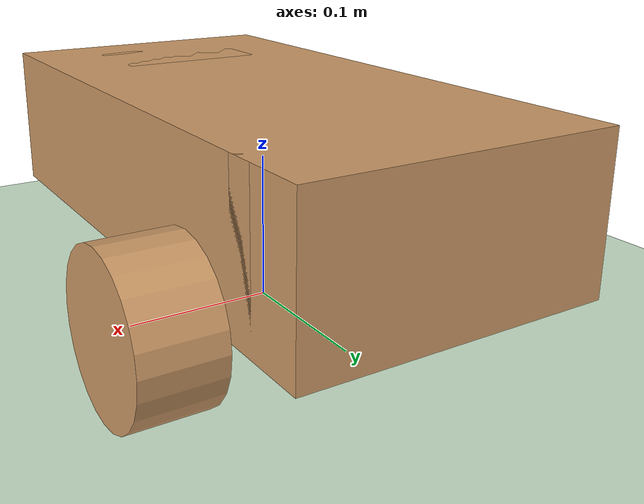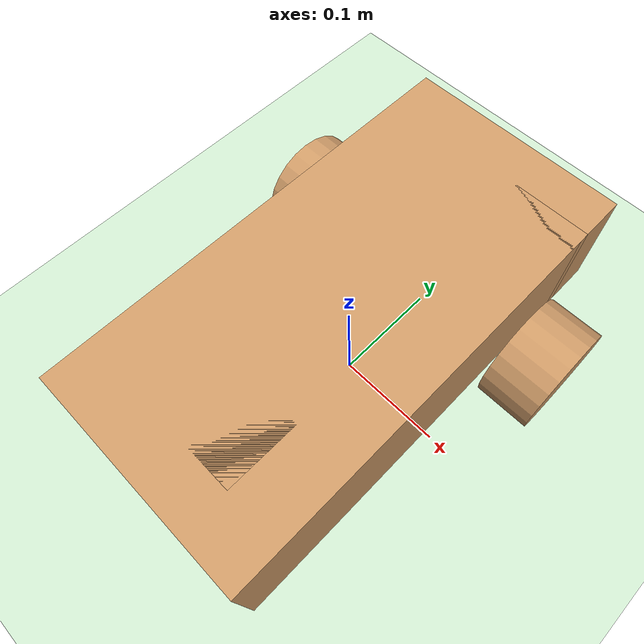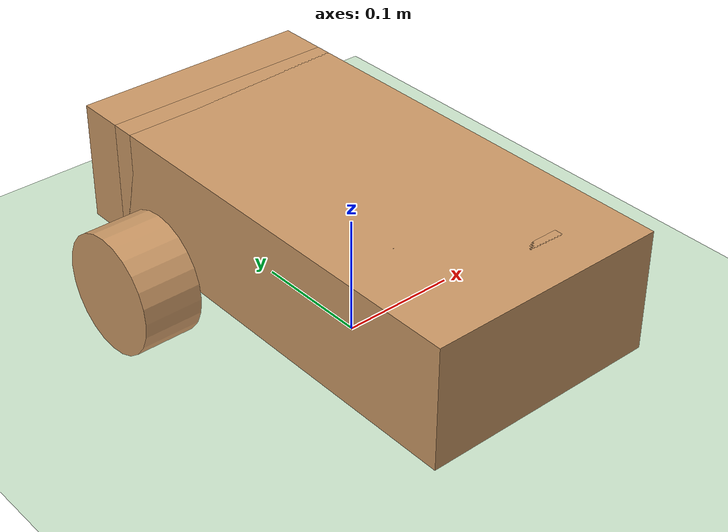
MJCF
<!-- Based off of point.xml from
https://github.com/openai/safety-gym/blob/master/safety_gym/xmls/point.xml-->
<mujoco>
    <compiler angle="degree" coordinate="local" inertiafromgeom="true" />
    <option integrator="RK4" timestep="0.02" />
    <default>
        <joint armature="0" damping="0" limited="false" />
        <geom conaffinity="0" condim="3" density="100" friction="1 0.5 0.5" margin="0"
            rgba="0.8 0.6 0.4 1" />
    </default>
    <asset>
        <texture builtin="gradient" height="100" rgb1="1 1 1" rgb2="0 0 0" type="skybox" width="100" />
        <texture builtin="flat" height="1278" mark="cross" markrgb="1 1 1" name="texgeom"
            random="0.01" rgb1="0.8 0.6 0.4" rgb2="0.8 0.6 0.4" type="cube" width="127" />
        <texture builtin="checker" height="100" name="texplane" rgb1="0 0 0" rgb2="0.8 0.8 0.8"
            type="2d" width="100" />
        <material name="MatPlane" reflectance="0.5" shininess="1" specular="1" texrepeat="30 30"
            texture="texplane" />
        <material name="geom" texture="texgeom" texuniform="true" />
    </asset>
    <worldbody>
        <light cutoff="100" diffuse="1 1 1" dir="-0 0 -1.3" directional="true" exponent="1"
            pos="0 0 1.3" specular=".1 .1 .1" />
        <geom conaffinity="1" condim="3" material="MatPlane" name="floor" pos="0 0 0"
            rgba="0.8 0.9 0.8 1" size="40 40 40" type="plane" />
        <body name="robot" pos="0 0 .1">
            <site name="robot" pos="0 0 0" />
            <joint type="free" name="robot" damping="0" />
            <geom name="robot" type="box" size=".1 .2 .05" />
            <geom name="back_bumper" type="box" pos="0 .15 0" size=".1 .01 .05" />
            <geom name="back_connector" type="box" pos="0 .125 0" size=".01 .025 .03" />
            <geom name="front_bumper" type="box" pos="0 -.165 0" size=".05 .01 .05" />
            <geom name="front_connector" type="box" pos="0 -.13 .04" size=".05 .03 .01" />
            <body name="left" pos="-.1 .1 -.05">
                <joint type="hinge" name="left_joint" axis="1 0 0" />
                <geom type="cylinder" name="left" size=".05 .05" fromto="-.055 0 0 -0.005 0 0" friction="3.1"/>
            </body>
            <body name="right" pos=".1 .1 -.05">
                <joint type="hinge" name="right_joint" axis="1 0 0" />
                <geom type="cylinder" name="right" size=".05 .05" fromto="0.005 0 0 .055 0 0" friction="3.1" />
            </body>
            <body name="front" pos="0 -.1 -.05">
                <joint name="front" type="ball" />
                <geom name="front" type="sphere" size="0.05" friction="1.1" />
            </body>
        </body>
    </worldbody>
    <actuator>
        <motor ctrllimited="true" ctrlrange="-0.03 0.03" gear="1" joint="left_joint" />
        <motor ctrllimited="true" ctrlrange="-0.03 0.03" gear="1" joint="right_joint" />
    </actuator>
</mujoco>
